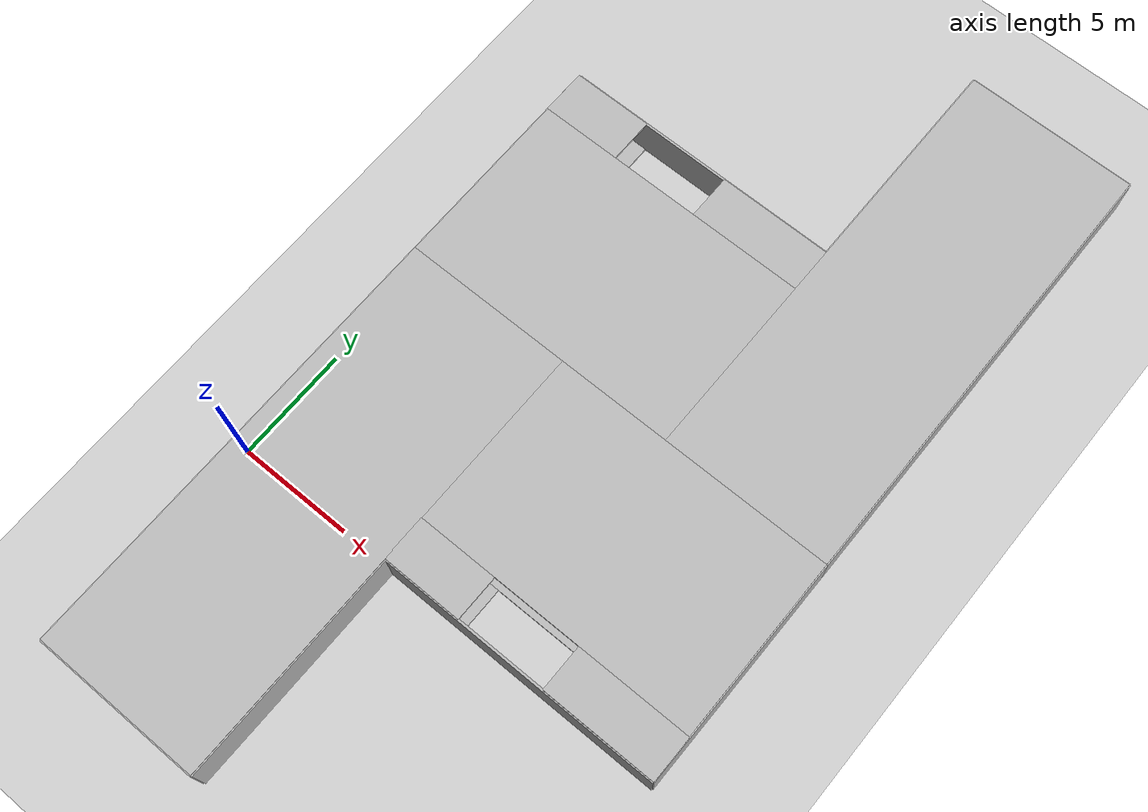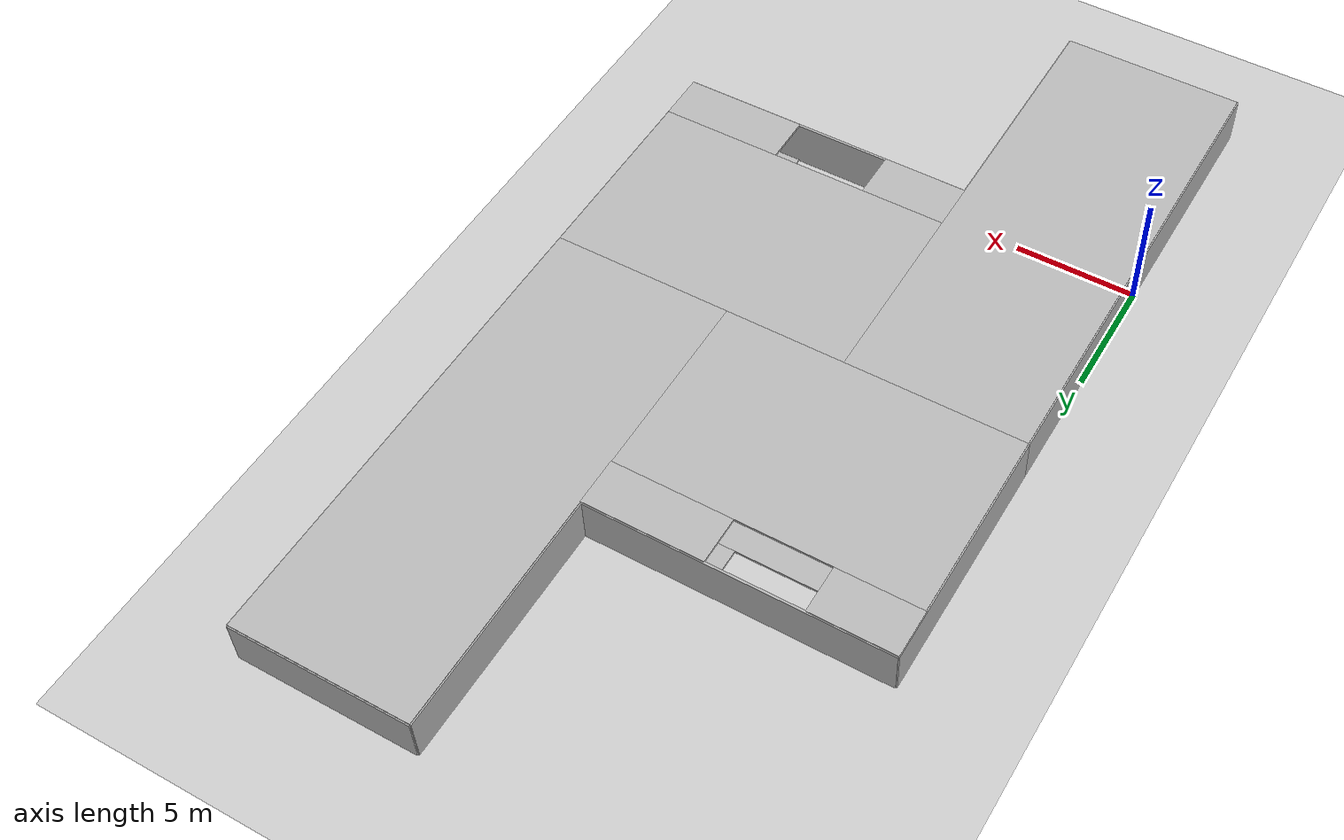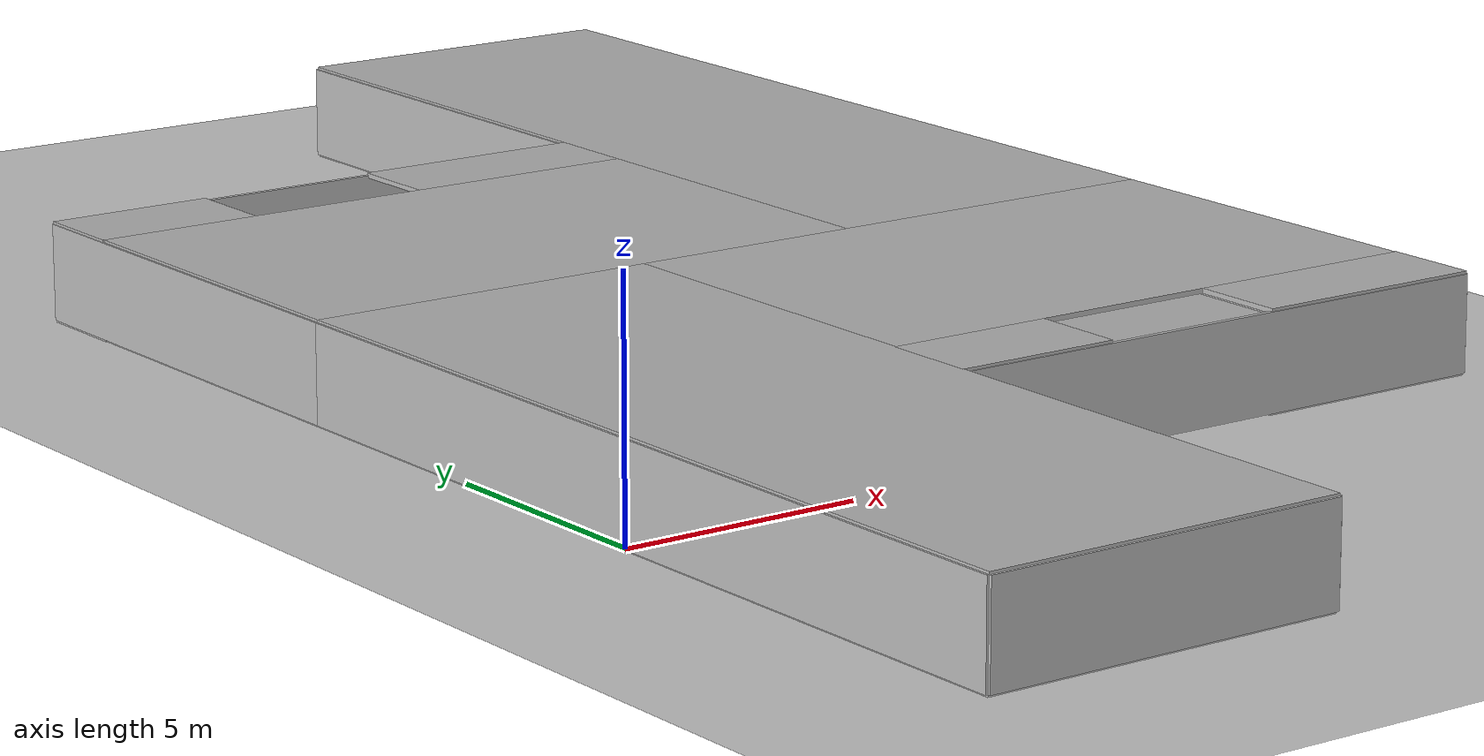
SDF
<sdf version="1.7">
 <world name="default">
  <model name="ground_plane">
   <static>1</static>
   <link name="link">
    <collision name="collision">
     <geometry><plane><normal>0 0 1</normal><size>100 100</size></plane></geometry>
     <surface><friction><ode><mu>100</mu><mu2>50</mu2></ode></friction></surface>
    </collision>
    <visual name="visual">
     <cast_shadows>0</cast_shadows>
     <geometry><plane><normal>0 0 1</normal><size>100 100</size></plane></geometry>
     <material>
      <script><uri>file://media/materials/scripts/gazebo.material</uri><name>Gazebo/Grey</name></script>
     </material>
    </visual>
   </link>
  </model>
  <model name="multi_room_floor">
   <static>1</static>
   <link name="lr_room">
    <visual name="box_visual">
     <pose>3.75 0 0 0 -0 0</pose>
     <geometry>
      <mesh>
       <uri>model://gazebo_worlds_cdt/models/multi_room_floor/meshes/wall_box.dae</uri>
       <scale>7.5 20 0.1</scale>
      </mesh>
     </geometry>
    </visual>
    <collision name="box_collision">
     <pose>3.75 0 0 0 -0 0</pose>
     <geometry><box><size>7.5 20 0.1</size></box></geometry>
    </collision>
   </link>
   <link name="ul_room">
    <visual name="box_visual">
     <pose>16.25 20 0 0 -0 0</pose>
     <geometry>
      <mesh>
       <uri>model://gazebo_worlds_cdt/models/multi_room_floor/meshes/wall_box.dae</uri>
       <scale>7.5 20 0.1</scale>
      </mesh>
     </geometry>
    </visual>
    <collision name="box_collision">
     <pose>16.25 20 0 0 -0 0</pose>
     <geometry><box><size>7.5 20 0.1</size></box></geometry>
    </collision>
   </link>
   <link name="ur_room">
    <visual name="box_visual">
     <pose>13.75 6 0 0 -0 0</pose>
     <geometry>
      <mesh>
       <uri>model://gazebo_worlds_cdt/models/multi_room_floor/meshes/wall_box.dae</uri>
       <scale>12.5 8 0.1</scale>
      </mesh>
     </geometry>
    </visual>
    <collision name="box_collision">
     <pose>13.75 6 0 0 -0 0</pose>
     <geometry><box><size>12.5 8 0.1</size></box></geometry>
    </collision>
   </link>
   <link name="lr_slot_lower">
    <visual name="box_visual">
     <pose>9.25 1 0 0 -0 0</pose>
     <geometry>
      <mesh>
       <uri>model://gazebo_worlds_cdt/models/multi_room_floor/meshes/wall_box.dae</uri>
       <scale>3.55 2 0.1</scale>
      </mesh>
     </geometry>
    </visual>
    <collision name="box_collision">
     <pose>9.25 1 0 0 -0 0</pose>
     <geometry><box><size>3.55 2 0.1</size></box></geometry>
    </collision>
   </link>
   <link name="lr_slot_upper">
    <visual name="box_visual">
     <pose>17.5 1 0 0 -0 0</pose>
     <geometry>
      <mesh>
       <uri>model://gazebo_worlds_cdt/models/multi_room_floor/meshes/wall_box.dae</uri>
       <scale>5.05 2 0.1</scale>
      </mesh>
     </geometry>
    </visual>
    <collision name="box_collision">
     <pose>17.5 1 0 0 -0 0</pose>
     <geometry><box><size>5.05 2 0.1</size></box></geometry>
    </collision>
   </link>
   <link name="ll_room">
    <visual name="box_visual">
     <pose>6.25 14 0 0 -0 0</pose>
     <geometry>
      <mesh>
       <uri>model://gazebo_worlds_cdt/models/multi_room_floor/meshes/wall_box.dae</uri>
       <scale>12.5 8 0.1</scale>
      </mesh>
     </geometry>
    </visual>
    <collision name="box_collision">
     <pose>6.25 14 0 0 -0 0</pose>
     <geometry><box><size>12.25 8 0.1</size></box></geometry>
    </collision>
   </link>
   <link name="ur_slot_lower">
    <visual name="box_visual">
     <pose>1.75 19 0 0 -0 0</pose>
     <geometry>
      <mesh>
       <uri>model://gazebo_worlds_cdt/models/multi_room_floor/meshes/wall_box.dae</uri>
       <scale>3.55 2 0.1</scale>
      </mesh>
     </geometry>
    </visual>
    <collision name="box_collision">
     <pose>1.75 19 0 0 -0 0</pose>
     <geometry><box><size>3.55 2 0.1</size></box></geometry>
    </collision>
   </link>
   <link name="ur_slot_upper">
    <visual name="box_visual">
     <pose>10 19 0 0 -0 0</pose>
     <geometry>
      <mesh>
       <uri>model://gazebo_worlds_cdt/models/multi_room_floor/meshes/wall_box.dae</uri>
       <scale>5.05 2 0.1</scale>
      </mesh>
     </geometry>
    </visual>
    <collision name="box_collision">
     <pose>10 19 0 0 -0 0</pose>
     <geometry><box><size>5.05 2 0.1</size></box></geometry>
    </collision>
   </link>
  </model>
  <model name="multi_room">
   <static>1</static>
   <link name="right">
    <visual name="box_visual">
     <pose>3.75 -10 1 0 -0 0</pose>
     <geometry>
      <mesh>
       <uri>model://gazebo_worlds_cdt/models/multi_room/meshes/wall_box.dae</uri>
       <scale>7.5 0.1 2</scale>
      </mesh>
     </geometry>
    </visual>
    <collision name="box_collision">
     <pose>3.75 -10 1 0 -0 0</pose>
     <geometry><box><size>7.5 0.1 2</size></box></geometry>
    </collision>
   </link>
   <link name="left1">
    <visual name="box_visual">
     <pose>1.25 10 1 0 -0 0</pose>
     <geometry>
      <mesh>
       <uri>model://gazebo_worlds_cdt/models/multi_room/meshes/wall_box.dae</uri>
       <scale>2.5 0.1 2</scale>
      </mesh>
     </geometry>
    </visual>
    <collision name="box_collision">
     <pose>1.25 10 1 0 -0 0</pose>
     <geometry><box><size>2.5 0.1 2</size></box></geometry>
    </collision>
   </link>
   <link name="left2">
    <visual name="box_visual">
     <pose>6.25 10 1 0 -0 0</pose>
     <geometry>
      <mesh>
       <uri>model://gazebo_worlds_cdt/models/multi_room/meshes/wall_box.dae</uri>
       <scale>2.5 0.1 2</scale>
      </mesh>
     </geometry>
    </visual>
    <collision name="box_collision">
     <pose>6.25 10 1 0 -0 0</pose>
     <geometry><box><size>2.5 0.1 2</size></box></geometry>
    </collision>
   </link>
   <link name="bot1">
    <visual name="box_visual">
     <pose>0 0 1 0 -0 0</pose>
     <geometry>
      <mesh><uri>model://gazebo_worlds_cdt/models/multi_room/meshes/wall_box.dae</uri><scale>0.1 20 2</scale></mesh>
     </geometry>
    </visual>
    <collision name="box_collision">
     <pose>0 0 1 0 -0 0</pose>
     <geometry><box><size>0.1 20 2</size></box></geometry>
    </collision>
   </link>
   <link name="top1">
    <visual name="box_visual">
     <pose>7.5 8.25 1 0 -0 0</pose>
     <geometry>
      <mesh>
       <uri>model://gazebo_worlds_cdt/models/multi_room/meshes/wall_box.dae</uri>
       <scale>0.1 3.5 2</scale>
      </mesh>
     </geometry>
    </visual>
    <collision name="box_collision">
     <pose>7.5 8.25 1 0 -0 0</pose>
     <geometry><box><size>0.1 3.5 2</size></box></geometry>
    </collision>
   </link>
   <link name="top2">
    <visual name="box_visual">
     <pose>7.5 -3 1 0 -0 0</pose>
     <geometry>
      <mesh><uri>model://gazebo_worlds_cdt/models/multi_room/meshes/wall_box.dae</uri><scale>0.1 14 2</scale></mesh>
     </geometry>
    </visual>
    <collision name="box_collision">
     <pose>7.5 -3 1 0 -0 0</pose>
     <geometry><box><size>0.1 14 2</size></box></geometry>
    </collision>
   </link>
   <link name="bl_bottom1">
    <visual name="box_visual">
     <pose>0 15 1 0 -0 0</pose>
     <geometry>
      <mesh><uri>model://gazebo_worlds_cdt/models/multi_room/meshes/wall_box.dae</uri><scale>0.1 10 2</scale></mesh>
     </geometry>
    </visual>
    <collision name="box_collision">
     <pose>0 15 1 0 -0 0</pose>
     <geometry><box><size>0.1 10 2</size></box></geometry>
    </collision>
   </link>
   <link name="bl_left">
    <visual name="box_visual">
     <pose>6.25 20 1 0 -0 0</pose>
     <geometry>
      <mesh>
       <uri>model://gazebo_worlds_cdt/models/multi_room/meshes/wall_box.dae</uri>
       <scale>12.5 0.1 2</scale>
      </mesh>
     </geometry>
    </visual>
    <collision name="box_collision">
     <pose>6.25 20 1 0 -0 0</pose>
     <geometry><box><size>12.5 0.1 2</size></box></geometry>
    </collision>
   </link>
   <link name="bl_right">
    <visual name="box_visual">
     <pose>10 10 1 0 -0 0</pose>
     <geometry>
      <mesh><uri>model://gazebo_worlds_cdt/models/multi_room/meshes/wall_box.dae</uri><scale>5 0.1 2</scale></mesh>
     </geometry>
    </visual>
    <collision name="box_collision">
     <pose>10 10 1 0 -0 0</pose>
     <geometry><box><size>5 0.1 2</size></box></geometry>
    </collision>
   </link>
   <link name="bl_top1">
    <visual name="box_visual">
     <pose>12.5 11.75 1 0 -0 0</pose>
     <geometry>
      <mesh>
       <uri>model://gazebo_worlds_cdt/models/multi_room/meshes/wall_box.dae</uri>
       <scale>0.1 3.5 2</scale>
      </mesh>
     </geometry>
    </visual>
    <collision name="box_collision">
     <pose>12.5 11.75 1 0 -0 0</pose>
     <geometry><box><size>0.1 3.5 2</size></box></geometry>
    </collision>
   </link>
   <link name="bl_top2">
    <visual name="box_visual">
     <pose>12.5 18 1 0 -0 0</pose>
     <geometry>
      <mesh><uri>model://gazebo_worlds_cdt/models/multi_room/meshes/wall_box.dae</uri><scale>0.1 4 2</scale></mesh>
     </geometry>
    </visual>
    <collision name="box_collision">
     <pose>12.5 18 1 0 -0 0</pose>
     <geometry><box><size>0.1 4 2</size></box></geometry>
    </collision>
   </link>
   <link name="tr_top1">
    <visual name="box_visual">
     <pose>20 5 1 0 -0 0</pose>
     <geometry>
      <mesh><uri>model://gazebo_worlds_cdt/models/multi_room/meshes/wall_box.dae</uri><scale>0.1 10 2</scale></mesh>
     </geometry>
    </visual>
    <collision name="box_collision">
     <pose>20 5 1 0 -0 0</pose>
     <geometry><box><size>0.1 10 2</size></box></geometry>
    </collision>
   </link>
   <link name="tr_right">
    <visual name="box_visual">
     <pose>13.75 0 1 0 -0 0</pose>
     <geometry>
      <mesh>
       <uri>model://gazebo_worlds_cdt/models/multi_room/meshes/wall_box.dae</uri>
       <scale>12.5 0.1 2</scale>
      </mesh>
     </geometry>
    </visual>
    <collision name="box_collision">
     <pose>13.75 0 1 0 -0 0</pose>
     <geometry><box><size>12.5 0.1 2</size></box></geometry>
    </collision>
   </link>
   <link name="tr_left1">
    <visual name="box_visual">
     <pose>13.75 10 1 0 -0 0</pose>
     <geometry>
      <mesh>
       <uri>model://gazebo_worlds_cdt/models/multi_room/meshes/wall_box.dae</uri>
       <scale>2.5 0.1 2</scale>
      </mesh>
     </geometry>
    </visual>
    <collision name="box_collision">
     <pose>13.75 10 1 0 -0 0</pose>
     <geometry><box><size>2.5 0.1 2</size></box></geometry>
    </collision>
   </link>
   <link name="tr_left2">
    <visual name="box_visual">
     <pose>18.75 10 1 0 -0 0</pose>
     <geometry>
      <mesh>
       <uri>model://gazebo_worlds_cdt/models/multi_room/meshes/wall_box.dae</uri>
       <scale>2.5 0.1 2</scale>
      </mesh>
     </geometry>
    </visual>
    <collision name="box_collision">
     <pose>18.75 10 1 0 -0 0</pose>
     <geometry><box><size>2.5 0.1 2</size></box></geometry>
    </collision>
   </link>
   <link name="tl_top">
    <visual name="box_visual">
     <pose>20 20 1 0 -0 0</pose>
     <geometry>
      <mesh><uri>model://gazebo_worlds_cdt/models/multi_room/meshes/wall_box.dae</uri><scale>0.1 20 2</scale></mesh>
     </geometry>
    </visual>
    <collision name="box_collision">
     <pose>20 20 1 0 -0 0</pose>
     <geometry><box><size>0.1 20 2</size></box></geometry>
    </collision>
   </link>
   <link name="tl_left">
    <visual name="box_visual">
     <pose>16.25 30 1 0 -0 0</pose>
     <geometry>
      <mesh>
       <uri>model://gazebo_worlds_cdt/models/multi_room/meshes/wall_box.dae</uri>
       <scale>7.5 0.1 2</scale>
      </mesh>
     </geometry>
    </visual>
    <collision name="box_collision">
     <pose>16.25 30 1 0 -0 0</pose>
     <geometry><box><size>7.5 0.1 2</size></box></geometry>
    </collision>
   </link>
   <link name="tl_bottom">
    <visual name="box_visual">
     <pose>12.5 25 1 0 -0 0</pose>
     <geometry>
      <mesh><uri>model://gazebo_worlds_cdt/models/multi_room/meshes/wall_box.dae</uri><scale>0.1 10 2</scale></mesh>
     </geometry>
    </visual>
    <collision name="box_collision">
     <pose>12.5 25 1 0 -0 0</pose>
     <geometry><box><size>0.1 10 2</size></box></geometry>
    </collision>
   </link>
  </model>
  <model name="multi_room_floor_0">
   <pose>0 0 2 0 -0 0</pose>
   <static>1</static>
   <link name="lr_room">
    <visual name="box_visual">
     <pose>3.75 0 0 0 -0 0</pose>
     <geometry>
      <mesh>
       <uri>model://gazebo_worlds_cdt/models/multi_room_floor/meshes/wall_box.dae</uri>
       <scale>7.5 20 0.1</scale>
      </mesh>
     </geometry>
    </visual>
    <collision name="box_collision">
     <pose>3.75 0 0 0 -0 0</pose>
     <geometry><box><size>7.5 20 0.1</size></box></geometry>
    </collision>
   </link>
   <link name="ul_room">
    <visual name="box_visual">
     <pose>16.25 20 0 0 -0 0</pose>
     <geometry>
      <mesh>
       <uri>model://gazebo_worlds_cdt/models/multi_room_floor/meshes/wall_box.dae</uri>
       <scale>7.5 20 0.1</scale>
      </mesh>
     </geometry>
    </visual>
    <collision name="box_collision">
     <pose>16.25 20 0 0 -0 0</pose>
     <geometry><box><size>7.5 20 0.1</size></box></geometry>
    </collision>
   </link>
   <link name="ur_room">
    <visual name="box_visual">
     <pose>13.75 6 0 0 -0 0</pose>
     <geometry>
      <mesh>
       <uri>model://gazebo_worlds_cdt/models/multi_room_floor/meshes/wall_box.dae</uri>
       <scale>12.5 8 0.1</scale>
      </mesh>
     </geometry>
    </visual>
    <collision name="box_collision">
     <pose>13.75 6 0 0 -0 0</pose>
     <geometry><box><size>12.5 8 0.1</size></box></geometry>
    </collision>
   </link>
   <link name="lr_slot_lower">
    <visual name="box_visual">
     <pose>9.25 1 0 0 -0 0</pose>
     <geometry>
      <mesh>
       <uri>model://gazebo_worlds_cdt/models/multi_room_floor/meshes/wall_box.dae</uri>
       <scale>3.55 2 0.1</scale>
      </mesh>
     </geometry>
    </visual>
    <collision name="box_collision">
     <pose>9.25 1 0 0 -0 0</pose>
     <geometry><box><size>3.55 2 0.1</size></box></geometry>
    </collision>
   </link>
   <link name="lr_slot_upper">
    <visual name="box_visual">
     <pose>17.5 1 0 0 -0 0</pose>
     <geometry>
      <mesh>
       <uri>model://gazebo_worlds_cdt/models/multi_room_floor/meshes/wall_box.dae</uri>
       <scale>5.05 2 0.1</scale>
      </mesh>
     </geometry>
    </visual>
    <collision name="box_collision">
     <pose>17.5 1 0 0 -0 0</pose>
     <geometry><box><size>5.05 2 0.1</size></box></geometry>
    </collision>
   </link>
   <link name="ll_room">
    <visual name="box_visual">
     <pose>6.25 14 0 0 -0 0</pose>
     <geometry>
      <mesh>
       <uri>model://gazebo_worlds_cdt/models/multi_room_floor/meshes/wall_box.dae</uri>
       <scale>12.5 8 0.1</scale>
      </mesh>
     </geometry>
    </visual>
    <collision name="box_collision">
     <pose>6.25 14 0 0 -0 0</pose>
     <geometry><box><size>12.25 8 0.1</size></box></geometry>
    </collision>
   </link>
   <link name="ur_slot_lower">
    <visual name="box_visual">
     <pose>1.75 19 0 0 -0 0</pose>
     <geometry>
      <mesh>
       <uri>model://gazebo_worlds_cdt/models/multi_room_floor/meshes/wall_box.dae</uri>
       <scale>3.55 2 0.1</scale>
      </mesh>
     </geometry>
    </visual>
    <collision name="box_collision">
     <pose>1.75 19 0 0 -0 0</pose>
     <geometry><box><size>3.55 2 0.1</size></box></geometry>
    </collision>
   </link>
   <link name="ur_slot_upper">
    <visual name="box_visual">
     <pose>10 19 0 0 -0 0</pose>
     <geometry>
      <mesh>
       <uri>model://gazebo_worlds_cdt/models/multi_room_floor/meshes/wall_box.dae</uri>
       <scale>5.05 2 0.1</scale>
      </mesh>
     </geometry>
    </visual>
    <collision name="box_collision">
     <pose>10 19 0 0 -0 0</pose>
     <geometry><box><size>5.05 2 0.1</size></box></geometry>
    </collision>
   </link>
  </model>
 </world>
</sdf>
